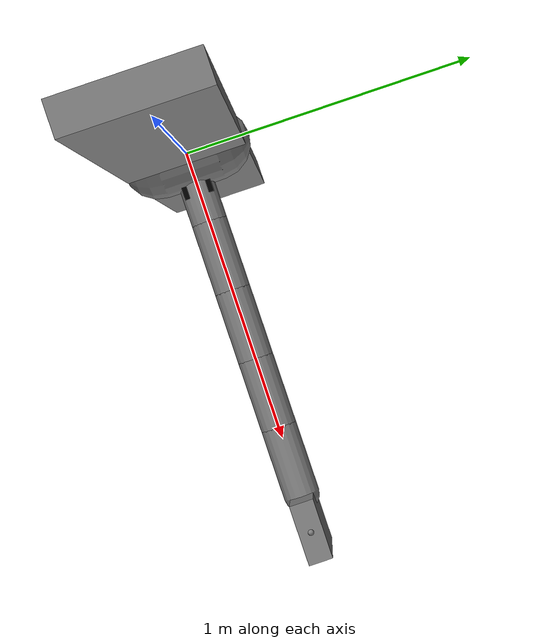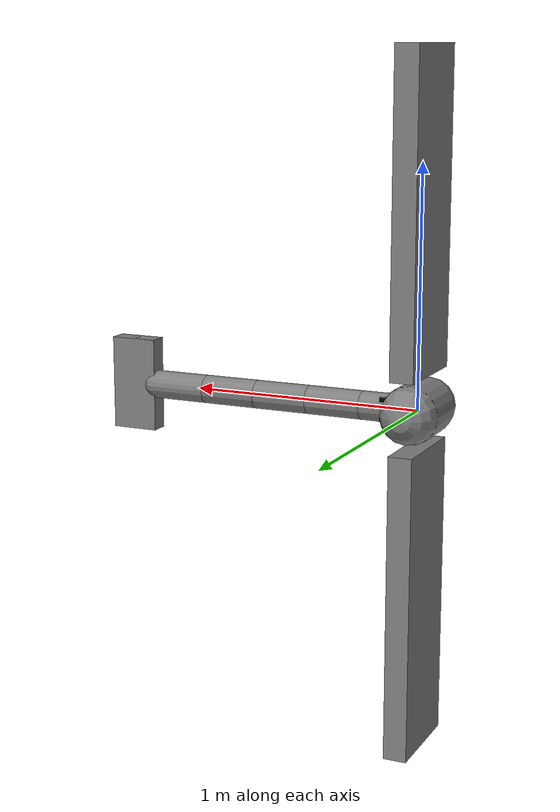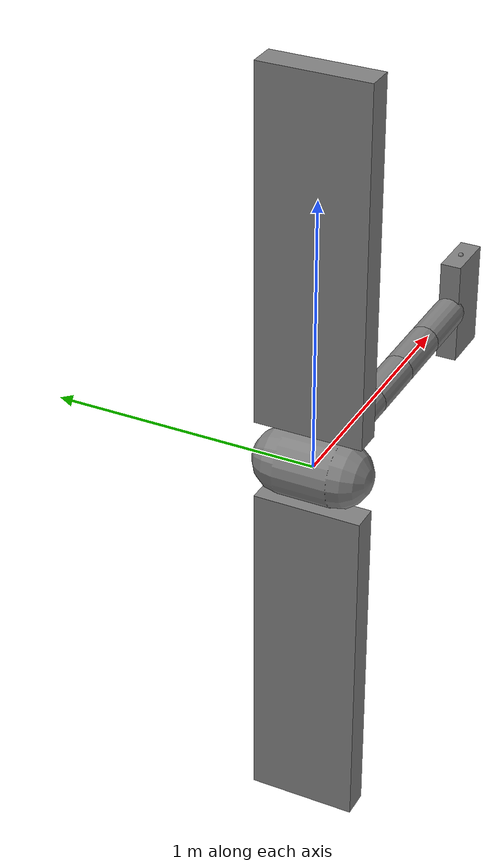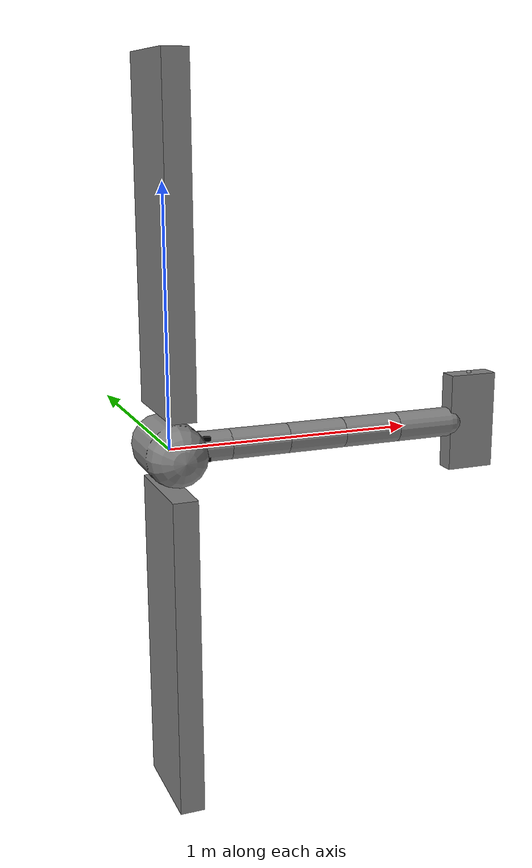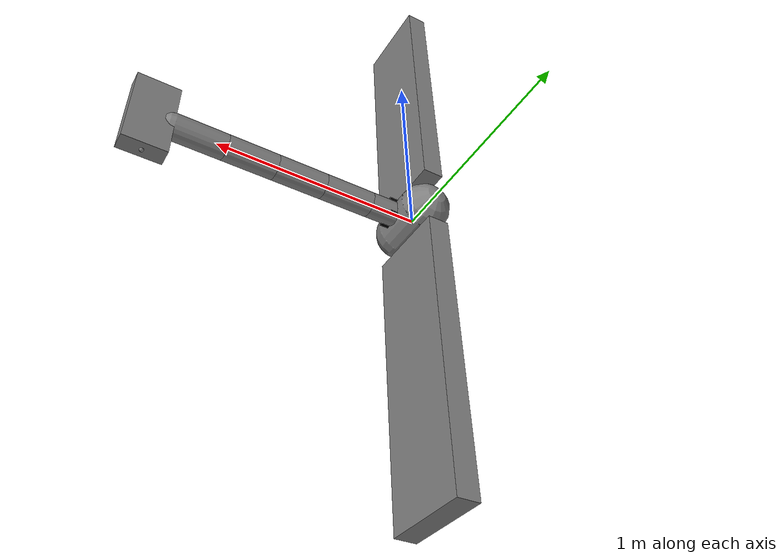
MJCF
<mujoco model="arm3d">
  <compiler inertiafromgeom="true" angle="radian" coordinate="local" />
  <option timestep="0.01" gravity="0 0 0" iterations="20" integrator="Euler" />

  <default>
    <joint armature='0.04' damping="1" limited="true"/>
    <geom friction=".8 .1 .1" density="300" margin="0.002" condim="1" contype="1" conaffinity="1"/>
  </default>

  <worldbody >
    <body name="palm" pos="0 0 0">
        <geom type="capsule" fromto="0 -0.1 0 0 0.1 0" size="0.12"/>

        <body name="proximal_1" pos="0 0 0">
            <joint name="proximal_j_1" type="hinge" pos="0 0 0" axis="0 1 0" range="-2.5236 2.3963" damping="1.0" />
            <geom type="capsule"  fromto="0 0 0 0.24 0 0" size="0.06" contype="1" conaffinity="1"/>
            <body name="distal_1" pos="0.24 0 0">
                <joint name="distal_j_1" type="hinge" pos="0 0 0" axis="0 1 0" range="-2.3213 2.3" damping="1.0"/>
                <geom type="capsule"  fromto="0 0 0 0.24 0 0" size="0.06" contype="1" conaffinity="1"/>
                <body name="distal_2" pos="0.24 0 0">
                    <joint name="distal_j_2" type="hinge" pos="0 0 0" axis="0 1 0" range="-2.3213 2.3" damping="1.0"/>
                    <geom type="capsule" fromto="0 0 0 0.24 0 0" size="0.06" contype="1" conaffinity="1"/>
                    <body name="distal_3" pos="0.24 0 0">
                        <joint name="distal_j_3" type="hinge" pos="0 0 0" axis="0 1 0" range="-2.3213 2.3" damping="1.0"/>
                        <geom type="capsule" fromto="0 0 0 0.24 0 0" size="0.06" contype="1" conaffinity="1"/>
                        <body name="distal_4" pos="0.24 0 0">
                            <joint name="distal_j_4" type="hinge" pos="0 0 0" axis="0 1 0" range="-2.3213 2.3" damping="1.0"/>
                            <geom type="capsule" fromto="0 0 0 0.24 0 0" size="0.06" contype="1" conaffinity="1"/>
                            <body name="distal_5" pos="0.24 0 0">
                                <joint name="distal_j_5" type="hinge" pos="0 0 0" axis="1 0 0" range="-1.8 1.8" damping="0.2"/>
                                <site name="tip arml" pos="0.1 0 -0.2" size="0.01" />
                                <site name="tip armr" pos="0.1 0 0.2" size="0.01" />
                                <geom density="188" type="box" pos = "0.1 0 0" size = "0.1 0.04 0.2" contype="1" conaffinity="1" />

                            </body>
                        </body>
                    </body>
                </body>
            </body>
        </body>
    </body>

    <body name="wall" pos="0. 0. 0.">
      <geom type="box" pos = "0 0 -0.8" size="0.05 0.2 0.65" contype="1" conaffinity="1" />
      <geom type="box" pos = "0 0 0.8" size="0.05 0.2 0.65" contype="1" conaffinity="1" />
      <body name="goal" pos="0.1 0 0">
        <geom rgba="0. 0. 0. 1" type="box" size="0.05 0.05 0.05" density='0.00001' contype="0" conaffinity="0"/>
        <body name="distal_11" pos="0 0 0">
          <site name="goal_pos" pos="0.0 0.0 0.0" size="0.01" />
        </body>
      </body>
    </body>

  </worldbody>

  <actuator>
    <motor joint="proximal_j_1" ctrlrange="-2 2" ctrllimited="true"/>
    <motor joint="distal_j_1" ctrlrange="-2 2" ctrllimited="true"/>
    <motor joint="distal_j_2" ctrlrange="-2 2" ctrllimited="true"/>
    <motor joint="distal_j_3" ctrlrange="-2 2" ctrllimited="true"/>
    <motor joint="distal_j_4" ctrlrange="-2 2" ctrllimited="true"/>
    <motor joint="distal_j_5" ctrlrange="-1.8 1.8" ctrllimited="true"/>
  </actuator>
</mujoco>
